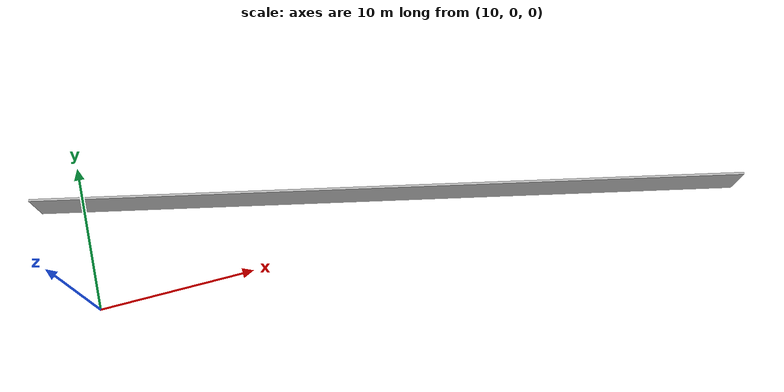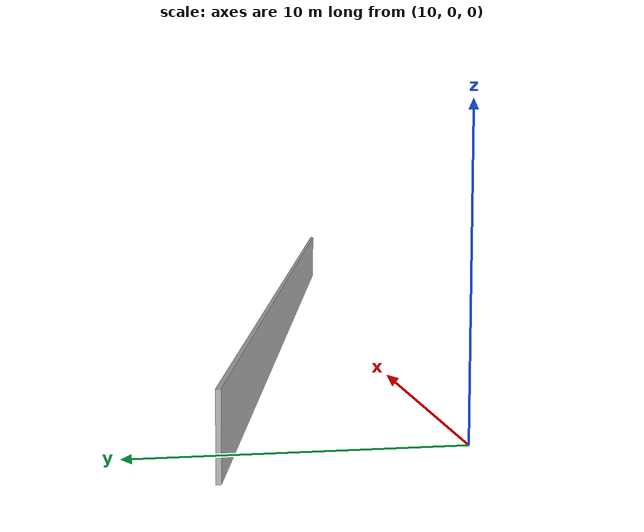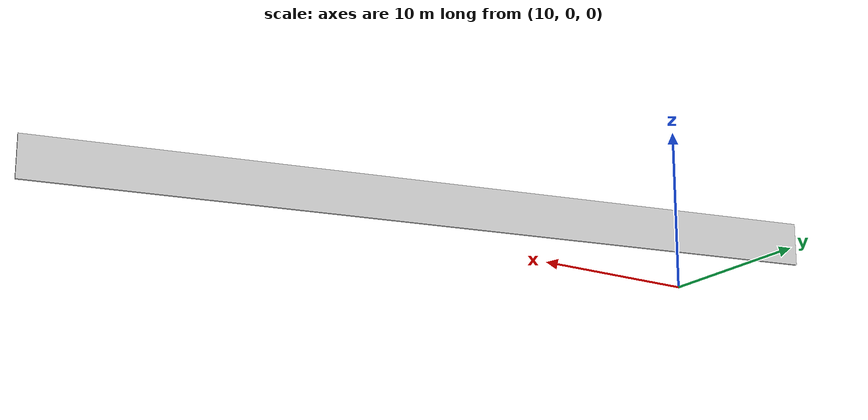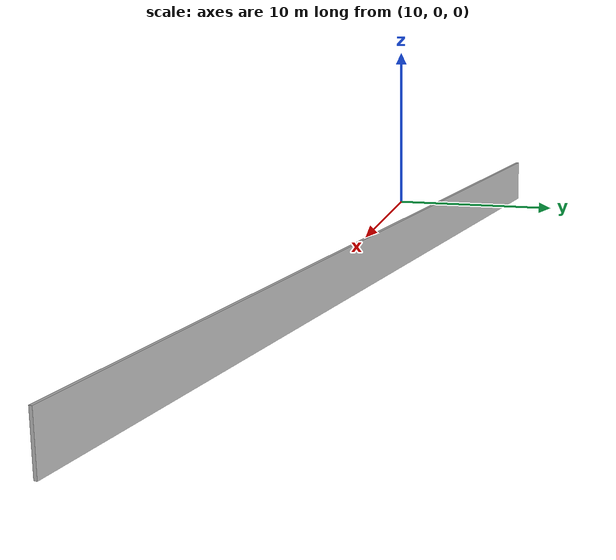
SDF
<?xml version="1.0" ?>
<sdf version="1.6">
  <model name="sps_1706">
    <pose frame="">0 0 0 0 -0 0</pose>
    <static>0</static>
    <self_collide>0</self_collide>
    <allow_auto_disable>0</allow_auto_disable>
    <link name="Wall9342">
      <kinematic>0</kinematic>
      <gravity>1</gravity>
      <self_collide>0</self_collide>
      <collision name="collision">
        <geometry>
          <box>
            <size>45.8818 0.15 2.5</size>
          </box>
        </geometry>
        <pose frame="">0 0 0 0 -0 0</pose>
      </collision>
      <visual name="visual">
        <geometry>
          <box>
            <size>45.8818 0.15 2.5</size>
          </box>
        </geometry>
        <pose frame="">0 0 0 0 -0 0</pose>
        <cast_shadows>1</cast_shadows>
        <transparency>0.0</transparency>
      </visual>
      <pose frame="">29.6707 2.41948 1.25 0 -0 2.9176</pose>
    </link>
  </model>
</sdf>
